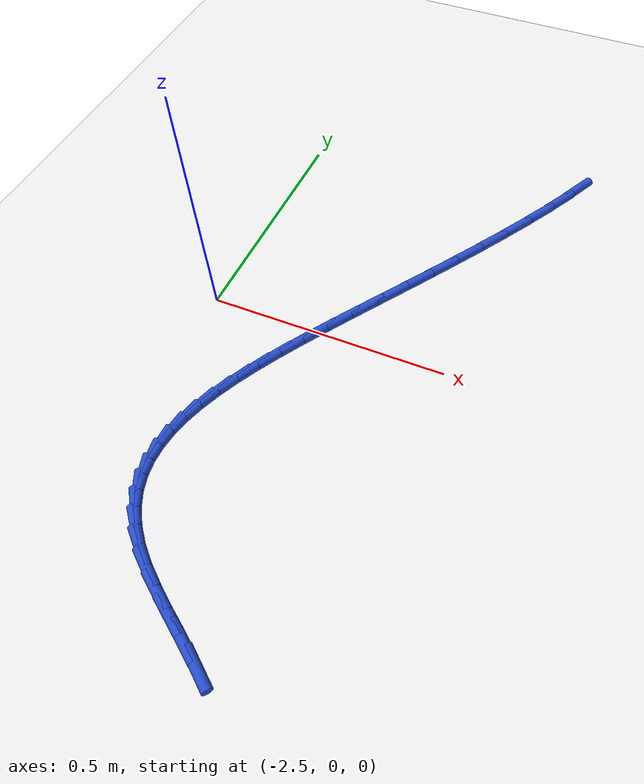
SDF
<sdf version="1.6">
 <world name="default">
  <model name="ground_plane">
   <static>1</static>
   <link name="link">
    <collision name="collision">
     <geometry><plane><normal>0 0 1</normal><size>100 100</size></plane></geometry>
     <surface><friction><ode><mu>100</mu><mu2>50</mu2></ode></friction></surface>
    </collision>
    <visual name="visual">
     <cast_shadows>0</cast_shadows>
     <geometry><plane><normal>0 0 1</normal><size>100 100</size></plane></geometry>
     <material>
      <script><uri>file://media/materials/scripts/gazebo.material</uri><name>Gazebo/WhiteGlow</name></script>
     </material>
    </visual>
   </link>
  </model>
  <model name="line">
   <link name="link_77">
    <pose>-1.8879071185835063 0.6041398547335624 0.01 0 1.57 1.1002261635459023</pose>
    <collision name="collision">
     <geometry><cylinder><radius>0.01</radius><length>0.08</length></cylinder></geometry>
    </collision>
    <visual name="visual">
     <material>
      <script><name>Gazebo/Blue</name><uri>file://media/materials/scripts/gazebo.material</uri></script>
     </material>
     <geometry><cylinder><radius>0.01</radius><length>0.08</length></cylinder></geometry>
    </visual>
   </link>
   <link name="link_78">
    <pose>-1.9160422408307642 0.548830161200758 0.01 0 1.57 1.0648649830526644</pose>
    <collision name="collision">
     <geometry><cylinder><radius>0.01</radius><length>0.08</length></cylinder></geometry>
    </collision>
    <visual name="visual">
     <material>
      <script><name>Gazebo/Blue</name><uri>file://media/materials/scripts/gazebo.material</uri></script>
     </material>
     <geometry><cylinder><radius>0.01</radius><length>0.08</length></cylinder></geometry>
    </visual>
   </link>
   <link name="link_79">
    <pose>-1.9485356229469735 0.49018093279261193 0.01 0 1.57 1.0392832979053523</pose>
    <collision name="collision">
     <geometry><cylinder><radius>0.01</radius><length>0.08</length></cylinder></geometry>
    </collision>
    <visual name="visual">
     <material>
      <script><name>Gazebo/Blue</name><uri>file://media/materials/scripts/gazebo.material</uri></script>
     </material>
     <geometry><cylinder><radius>0.01</radius><length>0.08</length></cylinder></geometry>
    </visual>
   </link>
   <link name="link_80">
    <pose>-1.9840583589602439 0.4297631090950606 0.01 0 1.57 1.020083005923052</pose>
    <collision name="collision">
     <geometry><cylinder><radius>0.01</radius><length>0.08</length></cylinder></geometry>
    </collision>
    <visual name="visual">
     <material>
      <script><name>Gazebo/Blue</name><uri>file://media/materials/scripts/gazebo.material</uri></script>
     </material>
     <geometry><cylinder><radius>0.01</radius><length>0.08</length></cylinder></geometry>
    </visual>
   </link>
   <link name="link_81">
    <pose>-2.0212815428986843 0.36914762969403725 0.01 0 1.57 1.0053237116140519</pose>
    <collision name="collision">
     <geometry><cylinder><radius>0.01</radius><length>0.08</length></cylinder></geometry>
    </collision>
    <visual name="visual">
     <material>
      <script><name>Gazebo/Blue</name><uri>file://media/materials/scripts/gazebo.material</uri></script>
     </material>
     <geometry><cylinder><radius>0.01</radius><length>0.08</length></cylinder></geometry>
    </visual>
   </link>
   <link name="link_82">
    <pose>-2.058886827269172 0.30988934140225877 0.01 0 1.57 0.9938286122047258</pose>
    <collision name="collision">
     <geometry><cylinder><radius>0.01</radius><length>0.08</length></cylinder></geometry>
    </collision>
    <visual name="visual">
     <material>
      <script><name>Gazebo/Blue</name><uri>file://media/materials/scripts/gazebo.material</uri></script>
     </material>
     <geometry><cylinder><radius>0.01</radius><length>0.08</length></cylinder></geometry>
    </visual>
   </link>
   <link name="link_83">
    <pose>-2.0959968389899974 0.2528709770515211 0.01 0 1.57 0.9853580900612572</pose>
    <collision name="collision">
     <geometry><cylinder><radius>0.01</radius><length>0.08</length></cylinder></geometry>
    </collision>
    <visual name="visual">
     <material>
      <script><name>Gazebo/Blue</name><uri>file://media/materials/scripts/gazebo.material</uri></script>
     </material>
     <geometry><cylinder><radius>0.01</radius><length>0.08</length></cylinder></geometry>
    </visual>
   </link>
   <link name="link_84">
    <pose>-2.1323253519153393 0.19807426907516118 0.01 0 1.57 0.9801962063981352</pose>
    <collision name="collision">
     <geometry><cylinder><radius>0.01</radius><length>0.08</length></cylinder></geometry>
    </collision>
    <visual name="visual">
     <material>
      <script><name>Gazebo/Blue</name><uri>file://media/materials/scripts/gazebo.material</uri></script>
     </material>
     <geometry><cylinder><radius>0.01</radius><length>0.08</length></cylinder></geometry>
    </visual>
   </link>
   <link name="link_85">
    <pose>-2.1676275439215344 0.14541784370026614 0.01 0 1.57 0.9787087115739055</pose>
    <collision name="collision">
     <geometry><cylinder><radius>0.01</radius><length>0.08</length></cylinder></geometry>
    </collision>
    <visual name="visual">
     <material>
      <script><name>Gazebo/Blue</name><uri>file://media/materials/scripts/gazebo.material</uri></script>
     </material>
     <geometry><cylinder><radius>0.01</radius><length>0.08</length></cylinder></geometry>
    </visual>
   </link>
   <link name="link_86">
    <pose>-2.2016585928849204 0.09482032715392348 0.01 0 1.57 0.9813461058456094</pose>
    <collision name="collision">
     <geometry><cylinder><radius>0.01</radius><length>0.08</length></cylinder></geometry>
    </collision>
    <visual name="visual">
     <material>
      <script><name>Gazebo/Blue</name><uri>file://media/materials/scripts/gazebo.material</uri></script>
     </material>
     <geometry><cylinder><radius>0.01</radius><length>0.08</length></cylinder></geometry>
    </visual>
   </link>
   <link name="link_87">
    <pose>-2.234173676681834 0.046200345663218775 0.01 0 1.57 0.988668063552608</pose>
    <collision name="collision">
     <geometry><cylinder><radius>0.01</radius><length>0.08</length></cylinder></geometry>
    </collision>
    <visual name="visual">
     <material>
      <script><name>Gazebo/Blue</name><uri>file://media/materials/scripts/gazebo.material</uri></script>
     </material>
     <geometry><cylinder><radius>0.01</radius><length>0.08</length></cylinder></geometry>
    </visual>
   </link>
   <link name="link_88">
    <pose>-2.2649279731886103 -0.0005234745447607186 0.01 0 1.57 1.00137404766223</pose>
    <collision name="collision">
     <geometry><cylinder><radius>0.01</radius><length>0.08</length></cylinder></geometry>
    </collision>
    <visual name="visual">
     <material>
      <script><name>Gazebo/Blue</name><uri>file://media/materials/scripts/gazebo.material</uri></script>
     </material>
     <geometry><cylinder><radius>0.01</radius><length>0.08</length></cylinder></geometry>
    </visual>
   </link>
   <link name="link_89">
    <pose>-2.2936766602815877 -0.04543250724292821 0.01 0 1.57 1.020340964210234</pose>
    <collision name="collision">
     <geometry><cylinder><radius>0.01</radius><length>0.08</length></cylinder></geometry>
    </collision>
    <visual name="visual">
     <material>
      <script><name>Gazebo/Blue</name><uri>file://media/materials/scripts/gazebo.material</uri></script>
     </material>
     <geometry><cylinder><radius>0.01</radius><length>0.08</length></cylinder></geometry>
    </visual>
   </link>
   <link name="link_90">
    <pose>-2.320174915837102 -0.08860812620419653 0.01 0 1.57 1.046667549951018</pose>
    <collision name="collision">
     <geometry><cylinder><radius>0.01</radius><length>0.08</length></cylinder></geometry>
    </collision>
    <visual name="visual">
     <material>
      <script><name>Gazebo/Blue</name><uri>file://media/materials/scripts/gazebo.material</uri></script>
     </material>
     <geometry><cylinder><radius>0.01</radius><length>0.08</length></cylinder></geometry>
    </visual>
   </link>
   <link name="link_91">
    <pose>-2.34417791773149 -0.13013170520147987 0.01 0 1.57 1.081722043417539</pose>
    <collision name="collision">
     <geometry><cylinder><radius>0.01</radius><length>0.08</length></cylinder></geometry>
    </collision>
    <visual name="visual">
     <material>
      <script><name>Gazebo/Blue</name><uri>file://media/materials/scripts/gazebo.material</uri></script>
     </material>
     <geometry><cylinder><radius>0.01</radius><length>0.08</length></cylinder></geometry>
    </visual>
   </link>
   <link name="link_92">
    <pose>-2.365440843841089 -0.17008461800769098 0.01 0 1.57 1.1271823651021062</pose>
    <collision name="collision">
     <geometry><cylinder><radius>0.01</radius><length>0.08</length></cylinder></geometry>
    </collision>
    <visual name="visual">
     <material>
      <script><name>Gazebo/Blue</name><uri>file://media/materials/scripts/gazebo.material</uri></script>
     </material>
     <geometry><cylinder><radius>0.01</radius><length>0.08</length></cylinder></geometry>
    </visual>
   </link>
   <link name="link_93">
    <pose>-2.383718872042235 -0.20854823839574274 0.01 0 1.57 1.185042700321727</pose>
    <collision name="collision">
     <geometry><cylinder><radius>0.01</radius><length>0.08</length></cylinder></geometry>
    </collision>
    <visual name="visual">
     <material>
      <script><name>Gazebo/Blue</name><uri>file://media/materials/scripts/gazebo.material</uri></script>
     </material>
     <geometry><cylinder><radius>0.01</radius><length>0.08</length></cylinder></geometry>
    </visual>
   </link>
   <link name="link_94">
    <pose>-2.398767180211266 -0.2456039401385492 0.01 0 1.57 1.2575319979147104</pose>
    <collision name="collision">
     <geometry><cylinder><radius>0.01</radius><length>0.08</length></cylinder></geometry>
    </collision>
    <visual name="visual">
     <material>
      <script><name>Gazebo/Blue</name><uri>file://media/materials/scripts/gazebo.material</uri></script>
     </material>
     <geometry><cylinder><radius>0.01</radius><length>0.08</length></cylinder></geometry>
    </visual>
   </link>
   <link name="link_95">
    <pose>-2.4103409462245167 -0.28133309700902326 0.01 0 1.57 1.3468473607502114</pose>
    <collision name="collision">
     <geometry><cylinder><radius>0.01</radius><length>0.08</length></cylinder></geometry>
    </collision>
    <visual name="visual">
     <material>
      <script><name>Gazebo/Blue</name><uri>file://media/materials/scripts/gazebo.material</uri></script>
     </material>
     <geometry><cylinder><radius>0.01</radius><length>0.08</length></cylinder></geometry>
    </visual>
   </link>
   <link name="link_96">
    <pose>-2.4181953479583247 -0.3158170827800782 0.01 0 1.57 1.4545700191488093</pose>
    <collision name="collision">
     <geometry><cylinder><radius>0.01</radius><length>0.08</length></cylinder></geometry>
    </collision>
    <visual name="visual">
     <material>
      <script><name>Gazebo/Blue</name><uri>file://media/materials/scripts/gazebo.material</uri></script>
     </material>
     <geometry><cylinder><radius>0.01</radius><length>0.08</length></cylinder></geometry>
    </visual>
   </link>
   <link name="link_97">
    <pose>-2.422085563289028 -0.3491372712246271 0.01 0 1.57 -1.5609078371211664</pose>
    <collision name="collision">
     <geometry><cylinder><radius>0.01</radius><length>0.08</length></cylinder></geometry>
    </collision>
    <visual name="visual">
     <material>
      <script><name>Gazebo/Blue</name><uri>file://media/materials/scripts/gazebo.material</uri></script>
     </material>
     <geometry><cylinder><radius>0.01</radius><length>0.08</length></cylinder></geometry>
    </visual>
   </link>
   <link name="link_98">
    <pose>-2.421766770092962 -0.3813750361155827 0.01 0 1.57 -1.419179955031639</pose>
    <collision name="collision">
     <geometry><cylinder><radius>0.01</radius><length>0.08</length></cylinder></geometry>
    </collision>
    <visual name="visual">
     <material>
      <script><name>Gazebo/Blue</name><uri>file://media/materials/scripts/gazebo.material</uri></script>
     </material>
     <geometry><cylinder><radius>0.01</radius><length>0.08</length></cylinder></geometry>
    </visual>
   </link>
   <link name="link_99">
    <pose>-2.416994146246463 -0.4126117512258596 0.01 0 1.57 -1.267995543964105</pose>
    <collision name="collision">
     <geometry><cylinder><radius>0.01</radius><length>0.08</length></cylinder></geometry>
    </collision>
    <visual name="visual">
     <material>
      <script><name>Gazebo/Blue</name><uri>file://media/materials/scripts/gazebo.material</uri></script>
     </material>
     <geometry><cylinder><radius>0.01</radius><length>0.08</length></cylinder></geometry>
    </visual>
   </link>
   <link name="link_100">
    <pose>-2.4075228696258684 -0.44292879032837035 0.01 0 1.57 -1.1159969827252778</pose>
    <collision name="collision">
     <geometry><cylinder><radius>0.01</radius><length>0.08</length></cylinder></geometry>
    </collision>
    <visual name="visual">
     <material>
      <script><name>Gazebo/Blue</name><uri>file://media/materials/scripts/gazebo.material</uri></script>
     </material>
     <geometry><cylinder><radius>0.01</radius><length>0.08</length></cylinder></geometry>
    </visual>
   </link>
   <link name="link_101">
    <pose>-2.3931081181075147 -0.47240752719602813 0.01 0 1.57 -0.9719022960078061</pose>
    <collision name="collision">
     <geometry><cylinder><radius>0.01</radius><length>0.08</length></cylinder></geometry>
    </collision>
    <visual name="visual">
     <material>
      <script><name>Gazebo/Blue</name><uri>file://media/materials/scripts/gazebo.material</uri></script>
     </material>
     <geometry><cylinder><radius>0.01</radius><length>0.08</length></cylinder></geometry>
    </visual>
   </link>
   <link name="link_102">
    <pose>-2.3735050695677393 -0.5011293356017463 0.01 0 1.57 -0.8420433915924999</pose>
    <collision name="collision">
     <geometry><cylinder><radius>0.01</radius><length>0.08</length></cylinder></geometry>
    </collision>
    <visual name="visual">
     <material>
      <script><name>Gazebo/Blue</name><uri>file://media/materials/scripts/gazebo.material</uri></script>
     </material>
     <geometry><cylinder><radius>0.01</radius><length>0.08</length></cylinder></geometry>
    </visual>
   </link>
   <link name="link_103">
    <pose>-2.348468901882878 -0.5291755893184382 0.01 0 1.57 -0.7297421677500832</pose>
    <collision name="collision">
     <geometry><cylinder><radius>0.01</radius><length>0.08</length></cylinder></geometry>
    </collision>
    <visual name="visual">
     <material>
      <script><name>Gazebo/Blue</name><uri>file://media/materials/scripts/gazebo.material</uri></script>
     </material>
     <geometry><cylinder><radius>0.01</radius><length>0.08</length></cylinder></geometry>
    </visual>
   </link>
   <link name="link_104">
    <pose>-2.3177744740011126 -0.5566303219997015 0.01 0 1.57 -0.6473660002390635</pose>
    <collision name="collision">
     <geometry><cylinder><radius>0.01</radius><length>0.08</length></cylinder></geometry>
    </collision>
    <visual name="visual">
     <material>
      <script><name>Gazebo/Blue</name><uri>file://media/materials/scripts/gazebo.material</uri></script>
     </material>
     <geometry><cylinder><radius>0.01</radius><length>0.08</length></cylinder></geometry>
    </visual>
   </link>
   <link name="link_105">
    <pose>-2.281990692112515 -0.5836848821312814 0.01 0 1.57 -0.6022730849976964</pose>
    <collision name="collision">
     <geometry><cylinder><radius>0.01</radius><length>0.08</length></cylinder></geometry>
    </collision>
    <visual name="visual">
     <material>
      <script><name>Gazebo/Blue</name><uri>file://media/materials/scripts/gazebo.material</uri></script>
     </material>
     <geometry><cylinder><radius>0.01</radius><length>0.08</length></cylinder></geometry>
    </visual>
   </link>
   <link name="link_106">
    <pose>-2.242735022896764 -0.6106723302873271 0.01 0 1.57 -0.5863856964000207</pose>
    <collision name="collision">
     <geometry><cylinder><radius>0.01</radius><length>0.08</length></cylinder></geometry>
    </collision>
    <visual name="visual">
     <material>
      <script><name>Gazebo/Blue</name><uri>file://media/materials/scripts/gazebo.material</uri></script>
     </material>
     <geometry><cylinder><radius>0.01</radius><length>0.08</length></cylinder></geometry>
    </visual>
   </link>
   <link name="link_107">
    <pose>-2.201696753425825 -0.6379354335089773 0.01 0 1.57 -0.5957130315172605</pose>
    <collision name="collision">
     <geometry><cylinder><radius>0.01</radius><length>0.08</length></cylinder></geometry>
    </collision>
    <visual name="visual">
     <material>
      <script><name>Gazebo/Blue</name><uri>file://media/materials/scripts/gazebo.material</uri></script>
     </material>
     <geometry><cylinder><radius>0.01</radius><length>0.08</length></cylinder></geometry>
    </visual>
   </link>
   <link name="link_108">
    <pose>-2.1605651707716587 -0.6658169588373709 0.01 0 1.57 -0.63027606248818</pose>
    <collision name="collision">
     <geometry><cylinder><radius>0.01</radius><length>0.08</length></cylinder></geometry>
    </collision>
    <visual name="visual">
     <material>
      <script><name>Gazebo/Blue</name><uri>file://media/materials/scripts/gazebo.material</uri></script>
     </material>
     <geometry><cylinder><radius>0.01</radius><length>0.08</length></cylinder></geometry>
    </visual>
   </link>
  </model>
 </world>
</sdf>
